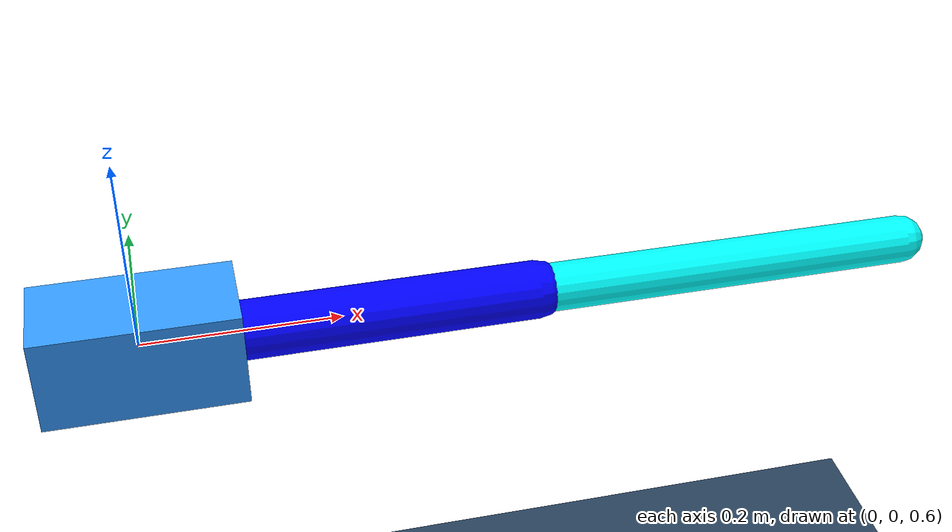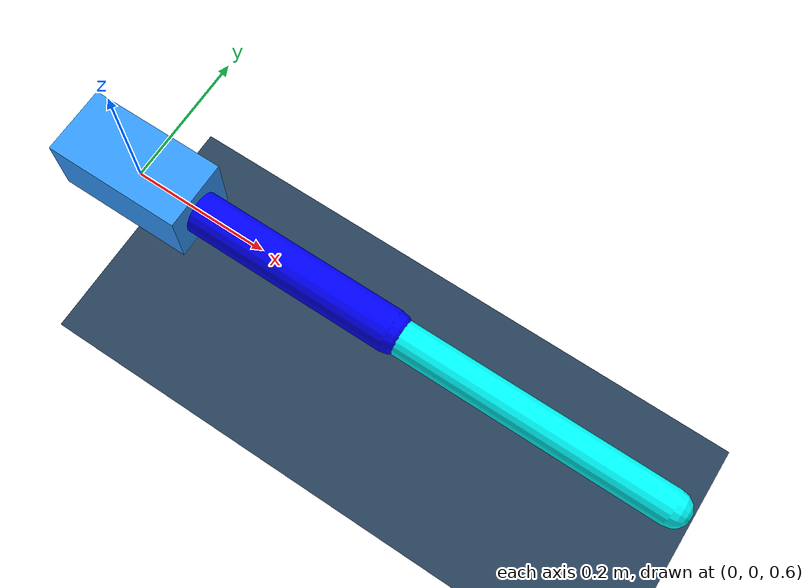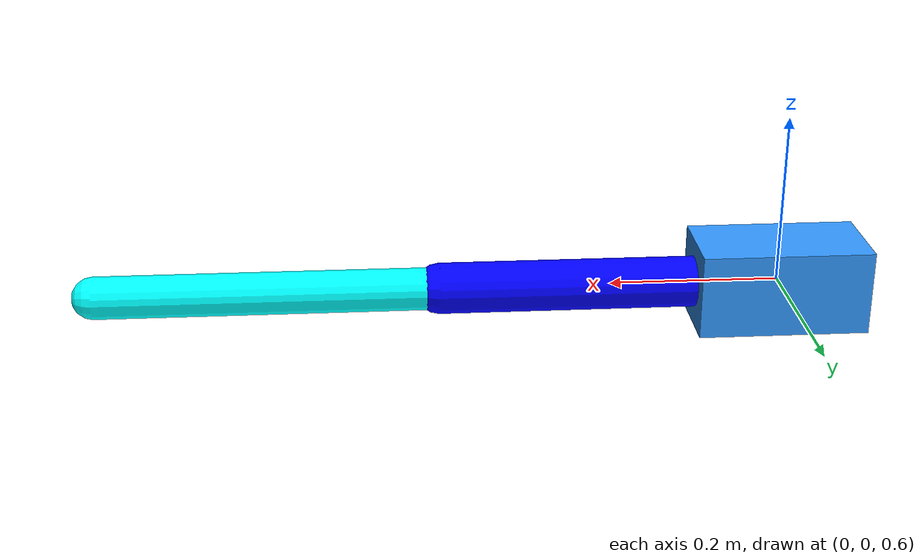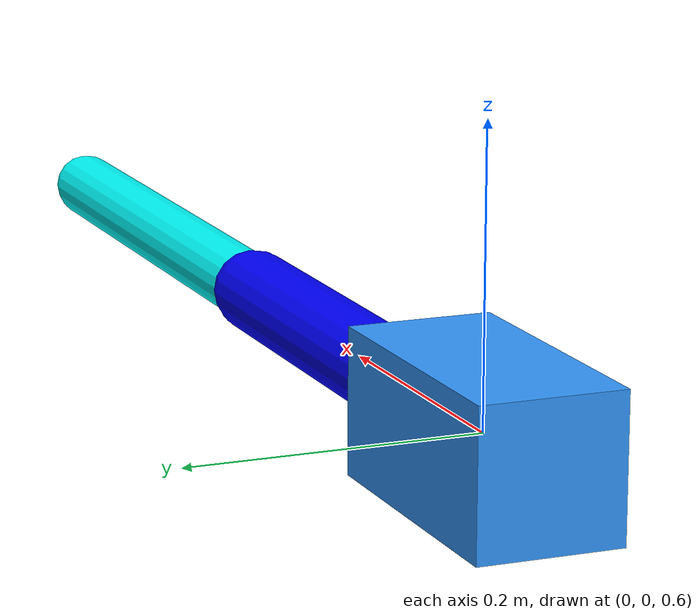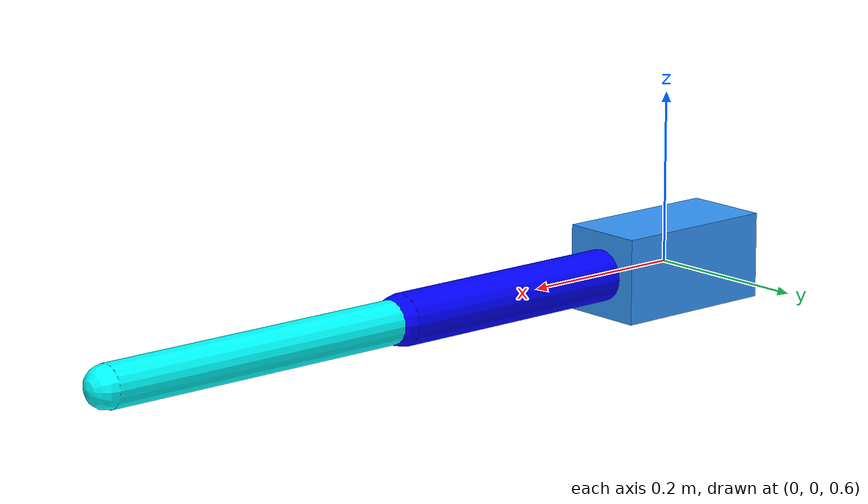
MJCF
<mujoco model="2Bar2D">

  <compiler inertiafromgeom="true" angle="radian"/>
  <option timestep="0.001" integrator="implicit"/>

  <default>
    <joint damping="0.1"/>
    <geom friction="2 0.005 0.0001" contype="1" conaffinity="2"/>
  </default>

  <asset>
    <texture name="grid" type="2d" builtin="checker" rgb1=".1 .2 .3" rgb2=".2 .3 .4" width="300" height="300" mark="edge" markrgb=".2 .3 .4"/>
    <material name="ground" texture="grid" texrepeat="1 1" texuniform="true" reflectance="0.1"/>
  </asset>

  <worldbody>

    <geom name="floor"
      type="plane"
      size="5 5 0.25"
      material="ground"
      contype="2"
      conaffinity="1"/>

    <body name="root" pos="0 0 0.6">

      <joint name="slide_x" type="slide" axis="1 0 0" />
      <joint name="slide_z" type="slide" axis="0 0 1"/>

      <body name="base">

        <geom name="torso"
              type="box"
              size="0.1 0.05 0.05"
              rgba="0.2 0.6 1 1"
              mass="2"/>

        <!-- LEFT HIP (offset in X) -->

        <!-- RIGHT HIP (offset in X opposite side) -->
        <body name="link1" pos="0.0 0 0">

          <joint name="hinge1"
                 type="hinge"
                 axis="0 -1 0"/>

          <geom name="thigh"
                type="capsule"
                fromto="0 0 0 0.4 0 0"
                size="0.03"
                rgba="0 0 1 1"
                mass="1"/>

          <body name="link2" pos="0.4 0 0">

            <joint name="hinge2"
                   type="hinge"
                   axis="0 -1 0"/>

            <geom name="shank"
                  type="capsule"
                  fromto="0 0 0 0.4 0 0"
                  size="0.025"
                  rgba="0 1 1 1"
                  mass="0.5"/>

          </body>
        </body>

      </body>
    </body>
  </worldbody>

  <!-- Coupler constraint -->

  <actuator>
    <motor name="torque1"
           joint="hinge1"
           ctrlrange="-10000 10000"/>
    <motor name="torque2"
           joint="hinge2"
           ctrlrange="-10000 10000"/>
  </actuator>

</mujoco>
